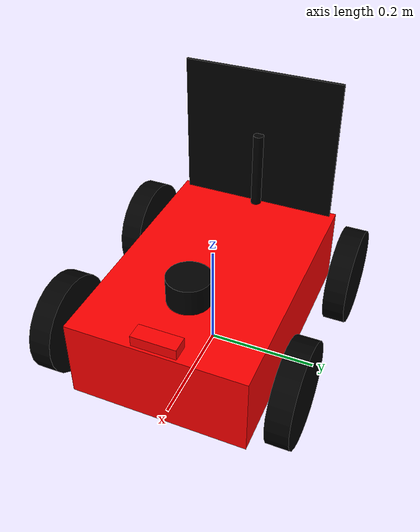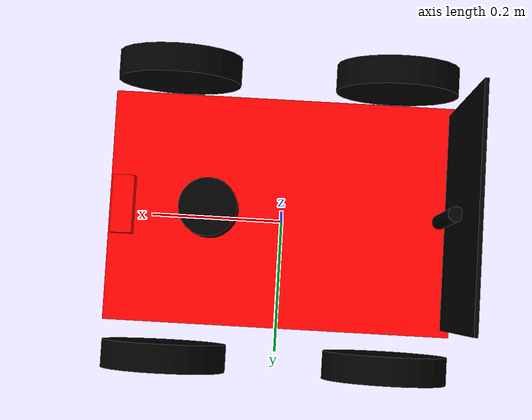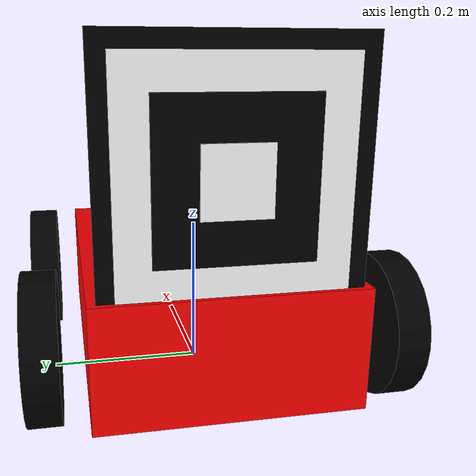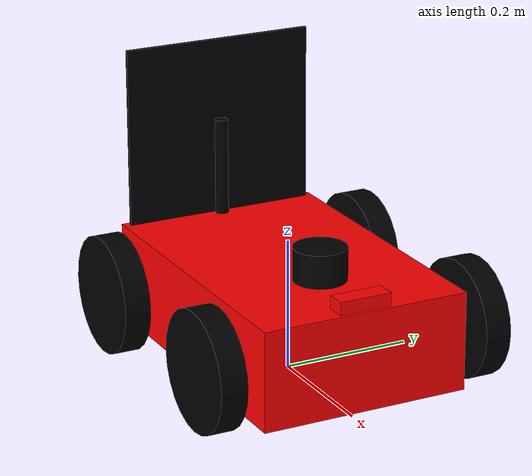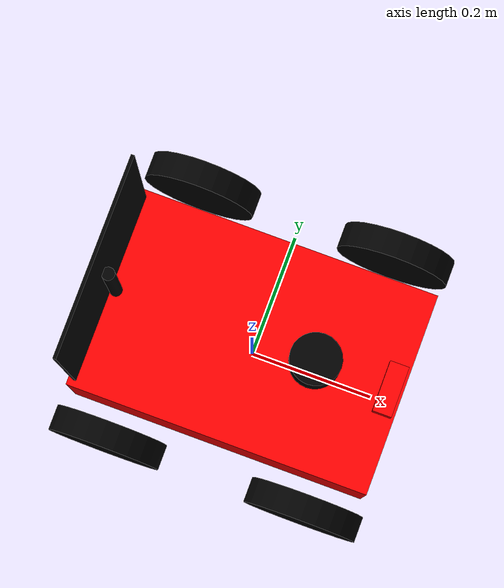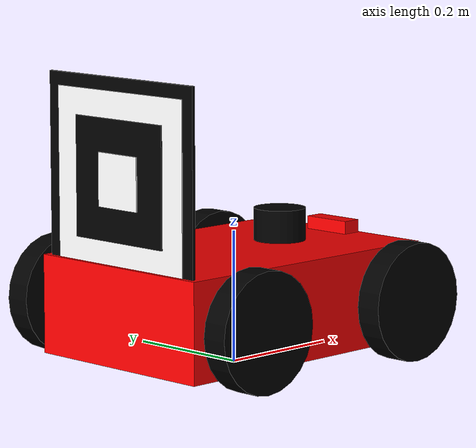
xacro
<?xml version="1.0"?>
<robot name="leader_bot" xmlns:xacro="http://www.ros.org/wiki/xacro">

  <xacro:include filename="$(find leader_follower_bot)/urdf/inertia_macros.xacro" />
  <xacro:include filename="$(find leader_follower_bot)/urdf/lidar.xacro" />
  <xacro:include filename="$(find leader_follower_bot)/urdf/camera.xacro" />
  <xacro:include filename="$(find leader_follower_bot)/urdf/aruco_marker.xacro" />

  <link name="base_footprint"/>

  <joint name="base_joint" type="fixed">
    <parent link="base_footprint"/>
    <child link="base_link"/>
    <origin xyz="0 0 0.1" rpy="0 0 0"/>
  </joint>

  <link name="base_link">
    <visual>
      <geometry><box size="0.48 0.32 0.15"/></geometry>
      <material name="red"><color rgba="1 0 0 1"/></material>
    </visual>
    <collision>
      <geometry><box size="0.48 0.32 0.15"/></geometry>
    </collision>
    <xacro:inertial_box mass="3.5" x="0.48" y="0.32" z="0.15">
      <origin xyz="0 0 0" rpy="0 0 0"/>
    </xacro:inertial_box>
  </link>

  <joint name="front_left_wheel_joint" type="continuous">
    <parent link="base_link"/>
    <child link="front_left_wheel"/>
    <origin xyz="0.16 0.21 0" rpy="-1.5708 0 0"/>
    <axis xyz="0 0 1"/>
  </joint>
  <link name="front_left_wheel">
    <visual><geometry><cylinder radius="0.09" length="0.04"/></geometry><material name="black"><color rgba="0 0 0 1"/></material></visual>
    <collision><geometry><cylinder radius="0.09" length="0.04"/></geometry></collision>
    <xacro:inertial_cylinder mass="0.4" length="0.04" radius="0.09"><origin xyz="0 0 0" rpy="0 0 0"/></xacro:inertial_cylinder>
  </link>

  <joint name="front_right_wheel_joint" type="continuous">
    <parent link="base_link"/>
    <child link="front_right_wheel"/>
    <origin xyz="0.16 -0.21 0" rpy="-1.5708 0 0"/>
    <axis xyz="0 0 1"/>
  </joint>
  <link name="front_right_wheel">
    <visual><geometry><cylinder radius="0.09" length="0.04"/></geometry><material name="black"><color rgba="0 0 0 1"/></material></visual>
    <collision><geometry><cylinder radius="0.09" length="0.04"/></geometry></collision>
    <xacro:inertial_cylinder mass="0.4" length="0.04" radius="0.09"><origin xyz="0 0 0" rpy="0 0 0"/></xacro:inertial_cylinder>
  </link>

  <joint name="rear_left_wheel_joint" type="continuous">
    <parent link="base_link"/>
    <child link="rear_left_wheel"/>
    <origin xyz="-0.16 0.21 0" rpy="-1.5708 0 0"/>
    <axis xyz="0 0 1"/>
  </joint>
  <link name="rear_left_wheel">
    <visual><geometry><cylinder radius="0.09" length="0.04"/></geometry><material name="black"><color rgba="0 0 0 1"/></material></visual>
    <collision><geometry><cylinder radius="0.09" length="0.04"/></geometry></collision>
    <xacro:inertial_cylinder mass="0.4" length="0.04" radius="0.09"><origin xyz="0 0 0" rpy="0 0 0"/></xacro:inertial_cylinder>
  </link>

  <joint name="rear_right_wheel_joint" type="continuous">
    <parent link="base_link"/>
    <child link="rear_right_wheel"/>
    <origin xyz="-0.16 -0.21 0" rpy="-1.5708 0 0"/>
    <axis xyz="0 0 1"/>
  </joint>
  <link name="rear_right_wheel">
    <visual><geometry><cylinder radius="0.09" length="0.04"/></geometry><material name="black"><color rgba="0 0 0 1"/></material></visual>
    <collision><geometry><cylinder radius="0.09" length="0.04"/></geometry></collision>
    <xacro:inertial_cylinder mass="0.4" length="0.04" radius="0.09"><origin xyz="0 0 0" rpy="0 0 0"/></xacro:inertial_cylinder>
  </link>

  <gazebo reference="front_left_wheel"><mu1>0.8</mu1><mu2>0.3</mu2></gazebo>
  <gazebo reference="front_right_wheel"><mu1>0.8</mu1><mu2>0.3</mu2></gazebo>
  <gazebo reference="rear_left_wheel"><mu1>0.8</mu1><mu2>0.3</mu2></gazebo>
  <gazebo reference="rear_right_wheel"><mu1>0.8</mu1><mu2>0.3</mu2></gazebo>

  <xacro:lidar_sensor parent_link="base_link" />
  <xacro:camera_sensor parent_link="base_link" />
  <xacro:aruco_target_plate parent_link="base_link" />

  <gazebo>
    <plugin filename="gz-sim-diff-drive-system" name="gz::sim::systems::DiffDrive">
      <left_joint>front_left_wheel_joint</left_joint>
      <left_joint>rear_left_wheel_joint</left_joint>
      <right_joint>front_right_wheel_joint</right_joint>
      <right_joint>rear_right_wheel_joint</right_joint>
      <wheel_separation>0.42</wheel_separation>
      <wheel_radius>0.09</wheel_radius>
      <topic>/leader/cmd_vel</topic>
      <odom_topic>/leader/odom</odom_topic>
      <tf_topic>/leader/tf</tf_topic>
      <frame_id>odom</frame_id>
      <child_frame_id>base_footprint</child_frame_id>
    </plugin>
  </gazebo>

</robot>

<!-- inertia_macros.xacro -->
<robot xmlns:xacro="http://www.ros.org/wiki/xacro">

  <xacro:macro name="inertial_box" params="mass x y z *origin">
    <inertial>
      <xacro:insert_block name="origin" />
      <mass value="${mass}" />
      <inertia ixx="${(1/12) * mass * (y*y + z*z)}" ixy="0.0" ixz="0.0"
               iyy="${(1/12) * mass * (x*x + z*z)}" iyz="0.0"
               izz="${(1/12) * mass * (x*x + y*y)}" />
    </inertial>
  </xacro:macro>

  <xacro:macro name="inertial_cylinder" params="mass length radius *origin">
    <inertial>
      <xacro:insert_block name="origin" />
      <mass value="${mass}" />
      <inertia ixx="${(1/12) * mass * (3*radius*radius + length*length)}" ixy="0.0" ixz="0.0"
               iyy="${(1/12) * mass * (3*radius*radius + length*length)}" iyz="0.0"
               izz="${(1/2) * mass * radius * radius}" />
    </inertial>
  </xacro:macro>

</robot>

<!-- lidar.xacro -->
<robot xmlns:xacro="http://www.ros.org/wiki/xacro">

  <xacro:macro name="lidar_sensor" params="parent_link">
    <joint name="laser_joint" type="fixed">
      <parent link="${parent_link}"/>
      <child link="laser_frame"/>
      <origin xyz="0.1 0 0.10" rpy="0 0 0"/>
    </joint>

    <link name="laser_frame">
      <visual>
        <geometry>
          <cylinder radius="0.04" length="0.05"/>
        </geometry>
        <material name="black">
          <color rgba="0 0 0 1"/>
        </material>
      </visual>
      <collision>
        <geometry>
          <cylinder radius="0.04" length="0.05"/>
        </geometry>
      </collision>
      <xacro:inertial_cylinder mass="0.1" length="0.05" radius="0.04">
        <origin xyz="0 0 0" rpy="0 0 0"/>
      </xacro:inertial_cylinder>
    </link>

    <gazebo reference="laser_frame">
      <sensor name="gpu_lidar" type="gpu_lidar">
        <pose>0 0 0 0 0 0</pose>
        <always_on>true</always_on>
        <update_rate>10</update_rate>
        <topic>/scan</topic>
        <lidar>
          <scan>
            <horizontal>
              <samples>360</samples>
              <resolution>1</resolution>
              <!-- Full 360 Field of View (-pi to +pi) -->
              <min_angle>-3.14159</min_angle>
              <max_angle>3.14159</max_angle>
            </horizontal>
          </scan>
          <range>
            <min>0.15</min>
            <max>10.0</max>
          </range>
        </lidar>
      </sensor>
    </gazebo>
  </xacro:macro>

</robot>

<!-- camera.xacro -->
<robot xmlns:xacro="http://www.ros.org/wiki/xacro">

  <xacro:macro name="camera_sensor" params="parent_link">
    <joint name="camera_joint" type="fixed">
      <parent link="${parent_link}"/>
      <child link="camera_link"/>
      <origin xyz="0.22 0 0.08" rpy="0 0 0"/>
    </joint>

    <link name="camera_link">
      <visual>
        <geometry>
          <box size="0.03 0.08 0.03"/>
        </geometry>
        <material name="red">
          <color rgba="1 0 0 1"/>
        </material>
      </visual>
      <collision>
        <geometry>
          <box size="0.03 0.08 0.03"/>
        </geometry>
      </collision>
      <xacro:inertial_box mass="0.05" x="0.03" y="0.08" z="0.03">
        <origin xyz="0 0 0" rpy="0 0 0"/>
      </xacro:inertial_box>
    </link>

    <gazebo reference="camera_link">
      <sensor name="camera" type="camera">
        <always_on>true</always_on>
        <update_rate>30</update_rate>
        <topic>/follower/camera/image_raw</topic>
        <camera>
          <horizontal_fov>1.25</horizontal_fov>
          <image>
            <width>640</width>
            <height>480</height>
            <format>R8G8B8</format>
          </image>
          <clip>
            <near>0.01</near>
            <far>12.0</far>
          </clip>
        </camera>
      </sensor>
    </gazebo>
  </xacro:macro>

</robot>

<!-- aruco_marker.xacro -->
<robot xmlns:xacro="http://www.ros.org/wiki/xacro">

  <xacro:macro name="aruco_target_plate" params="parent_link">

    <joint name="aruco_pole_joint" type="fixed">
      <parent link="${parent_link}"/>
      <child link="aruco_pole_link"/>
      <origin xyz="-0.22 0 0.15" rpy="0 0 0"/>
    </joint>

    <link name="aruco_pole_link">
      <visual>
        <geometry><cylinder radius="0.01" length="0.15"/></geometry>
        <material name="black"><color rgba="0 0 0 1"/></material>
      </visual>
      <xacro:inertial_box mass="0.01" x="0.02" y="0.02" z="0.15">
        <origin xyz="0 0 0" rpy="0 0 0"/>
      </xacro:inertial_box>
    </link>

    <joint name="aruco_plate_joint" type="fixed">
      <parent link="aruco_pole_link"/>
      <child link="aruco_plate_link"/>
      <origin xyz="-0.01 0 0.05" rpy="0 0 3.14159"/>
    </joint>

    <link name="aruco_plate_link">
      <visual>
        <geometry><box size="0.005 0.30 0.30"/></geometry>
        <material name="black"><color rgba="0 0 0 1"/></material>
      </visual>
      <collision>
        <geometry><box size="0.005 0.30 0.30"/></geometry>
      </collision>
      <xacro:inertial_box mass="0.02" x="0.005" y="0.30" z="0.30">
        <origin xyz="0 0 0" rpy="0 0 0"/>
      </xacro:inertial_box>
    </link>

    <joint name="aruco_white_border_joint" type="fixed">
      <parent link="aruco_plate_link"/>
      <child link="aruco_white_border_link"/>
      <origin xyz="0.003 0 0" rpy="0 0 0"/>
    </joint>

    <link name="aruco_white_border_link">
      <visual>
        <geometry><box size="0.002 0.26 0.26"/></geometry>
        <material name="white"><color rgba="1 1 1 1"/></material>
      </visual>
    </link>

    <joint name="aruco_inner_pattern_joint" type="fixed">
      <parent link="aruco_white_border_link"/>
      <child link="aruco_inner_pattern_link"/>
      <origin xyz="0.002 0 0" rpy="0 0 0"/>
    </joint>

    <link name="aruco_inner_pattern_link">
      <visual>
        <geometry><box size="0.002 0.18 0.18"/></geometry>
        <material name="black"><color rgba="0 0 0 1"/></material>
      </visual>
    </link>

    <joint name="aruco_center_dot_joint" type="fixed">
      <parent link="aruco_inner_pattern_link"/>
      <child link="aruco_center_dot_link"/>
      <origin xyz="0.002 0 0" rpy="0 0 0"/>
    </joint>

    <link name="aruco_center_dot_link">
      <visual>
        <geometry><box size="0.002 0.08 0.08"/></geometry>
        <material name="white"><color rgba="1 1 1 1"/></material>
      </visual>
    </link>

    <gazebo reference="aruco_plate_link">
      <material><ambient>0 0 0 1</ambient><diffuse>0 0 0 1</diffuse></material>
    </gazebo>
    <gazebo reference="aruco_white_border_link">
      <material><ambient>1 1 1 1</ambient><diffuse>1 1 1 1</diffuse></material>
    </gazebo>
    <gazebo reference="aruco_inner_pattern_link">
      <material><ambient>0 0 0 1</ambient><diffuse>0 0 0 1</diffuse></material>
    </gazebo>
    <gazebo reference="aruco_center_dot_link">
      <material><ambient>1 1 1 1</ambient><diffuse>1 1 1 1</diffuse></material>
    </gazebo>

  </xacro:macro>

</robot>
